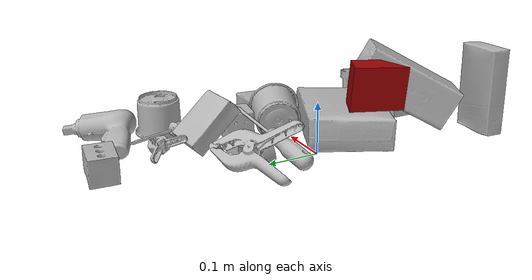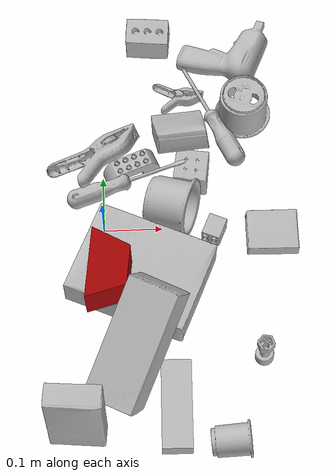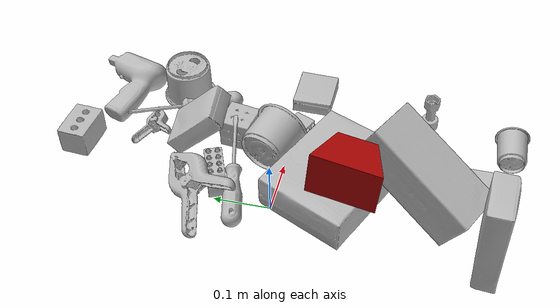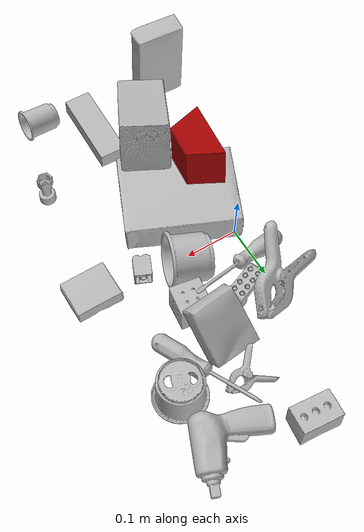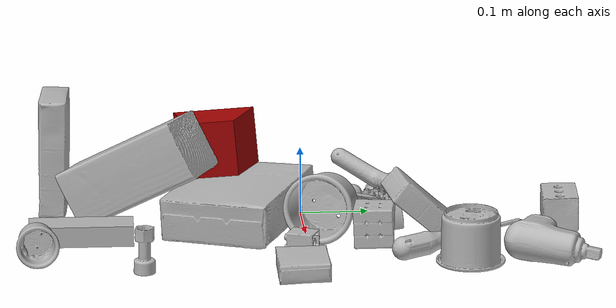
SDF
<sdf version="1.4">
  <world name="default">
    <light name="light1" type="point">
      <pose>0 0 1 0 0 0</pose>
      <diffuse>3 3 3 1</diffuse>
      <specular>3 3 3 1</specular>
    </light>
    <light name="light2" type="point">
      <pose>0 0.5 2 0 0 0</pose>
      <diffuse>1 1 1 1</diffuse>
      <specular>1 1 1 1</specular>
    </light>
    <light name="light3" type="point">
      <pose>0 0.5 2 0 0 0</pose>
      <diffuse>3 3 3 1</diffuse>
      <specular>3 3 3 1</specular>
    </light>
    <scene>
      <ambient>0.7 0.7 0.7</ambient>
    </scene>
    <model name="box21">
      <link name="link_box21">
        <collision name="default">
          <geometry>
            <mesh>
              <uri>model://cracker_box/collision_meshes/collision.obj</uri>
              <scale>1.0 1.0 1.0</scale>
            </mesh>
          </geometry>
          <surface>
            <friction>
              <ode>
                <mu>0.5</mu>
                <mu2>0.5</mu2>
              </ode>
            </friction>
          <contact>
        <ode>
            <max_vel>0</max_vel>
            <min_depth>0.0001</min_depth>
            <kp>1e8</kp>
        </ode>
    </contact></surface>
        </collision>
        <visual name="default">
          <geometry>
            <mesh>
              <uri>model://cracker_box/visual_meshes/visual.dae</uri>
              <scale>1.0 1.0 1.0</scale>
            </mesh>
          </geometry>
        </visual>
        <inertial>
          <mass>3.1344146728515625</mass>
          <pose>0.0009464123286306858 0.00025434247800149024 -0.0017029535956680775 -0.0003162077429326042 -0.011106488668875016 0.0025467950024750923</pose>
          <inertia>
            <ixx>0.0079725515</ixx>
            <iyy>0.01316425</iyy>
            <izz>0.01878659</izz>
            <ixy>0</ixy>
            <ixz>0</ixz>
            <iyz>0</iyz>
          </inertia>
        </inertial>
      </link>
      <pose>0.060860686004161835 -0.09581322222948074 0.03588751330971718 3.110387550784714 -0.021383625491293308 2.730843655550283</pose>
    </model>
    <model name="box22">
      <link name="link_box22">
        <collision name="default">
          <geometry>
            <mesh>
              <uri>model://jenga/collision_meshes/collision.obj</uri>
              <scale>1.0 1.0 1.0</scale>
            </mesh>
          </geometry>
          <surface>
            <friction>
              <ode>
                <mu>0.5</mu>
                <mu2>0.5</mu2>
              </ode>
            </friction>
          <contact>
        <ode>
            <max_vel>0</max_vel>
            <min_depth>0.0001</min_depth>
            <kp>1e8</kp>
        </ode>
    </contact></surface>
        </collision>
        <visual name="default">
          <geometry>
            <mesh>
              <uri>model://jenga/visual_meshes/visual.dae</uri>
              <scale>1.0 1.0 1.0</scale>
            </mesh>
          </geometry>
        </visual>
        <inertial>
          <mass>0.23869852721691132</mass>
          <pose>-2.502855807051674e-07 -0.0001025000965455547 -4.092339804628864e-05 0.0 -7.34215461761844e-07 0.0</pose>
          <inertia>
            <ixx>6.605367e-05</ixx>
            <iyy>0.00044757788</iyy>
            <izz>0.00047782745</izz>
            <ixy>0</ixy>
            <ixz>0</ixz>
            <iyz>0</iyz>
          </inertia>
        </inertial>
      </link>
      <pose>0.1126585602760315 -0.324530690908432 0.015000006183981895 3.1415926122303137 -4.0454671619777574e-10 1.554315019730165</pose>
    </model>
    <model name="box23">
      <link name="link_box23">
        <collision name="default">
          <geometry>
            <mesh>
              <uri>model://rubiks_cube/collision_meshes/collision.obj</uri>
              <scale>1.0 1.0 1.0</scale>
            </mesh>
          </geometry>
          <surface>
            <friction>
              <ode>
                <mu>0.5</mu>
                <mu2>0.5</mu2>
              </ode>
            </friction>
          <contact>
        <ode>
            <max_vel>0</max_vel>
            <min_depth>0.0001</min_depth>
            <kp>1e8</kp>
        </ode>
    </contact></surface>
        </collision>
        <visual name="default">
          <geometry>
            <mesh>
              <uri>model://rubiks_cube/visual_meshes/visual.dae</uri>
              <scale>1.0 1.0 1.0</scale>
            </mesh>
          </geometry>
        </visual>
        <inertial>
          <mass>0.26229962706565857</mass>
          <pose>2.6721041649580002e-05 5.2569666877388954e-05 -7.264316082000732e-06 -0.05467189873579491 -0.09814109048128683 -0.0344550730209751</pose>
          <inertia>
            <ixx>0.00014493814</ixx>
            <iyy>0.00014426222</iyy>
            <izz>0.00014613918</izz>
            <ixy>0</ixy>
            <ixz>0</ixz>
            <iyz>0</iyz>
          </inertia>
        </inertial>
      </link>
      <pose>0.15299853682518005 0.09395481646060944 0.029261628165841103 1.2520317419810192 1.537391742064347 1.1236884929141835</pose>
    </model>
    <model name="cup1">
      <link name="link_cup1">
        <collision name="default">
          <geometry>
            <mesh>
              <uri>model://j_cups/collision_meshes/collision.obj</uri>
              <scale>1.0 1.0 1.0</scale>
            </mesh>
          </geometry>
          <surface>
            <friction>
              <ode>
                <mu>0.5</mu>
                <mu2>0.5</mu2>
              </ode>
            </friction>
          <contact>
        <ode>
            <max_vel>0</max_vel>
            <min_depth>0.0001</min_depth>
            <kp>1e8</kp>
        </ode>
    </contact></surface>
        </collision>
        <visual name="default">
          <geometry>
            <mesh>
              <uri>model://j_cups/visual_meshes/visual.dae</uri>
              <scale>1.0 1.0 1.0</scale>
            </mesh>
          </geometry>
        </visual>
        <inertial>
          <mass>0.10388943552970886</mass>
          <pose>0.0006164857186377048 0.0005398984649218619 -0.0013479008339345455 0.03030360356214998 0.03758024855654077 0.43868424196936845</pose>
          <inertia>
            <ixx>0.00015254253</ixx>
            <iyy>0.0001541288</iyy>
            <izz>0.00017584988</izz>
            <ixy>0</ixy>
            <ixz>0</ixz>
            <iyz>0</iyz>
          </inertia>
        </inertial>
      </link>
      <pose>0.11553996801376343 0.024649348109960556 0.04714740067720413 1.4504657922654378 0.28816679903322884 1.2046305521339118</pose>
    </model>
    <model name="cup2">
      <link name="link_cup2">
        <collision name="default">
          <geometry>
            <mesh>
              <uri>model://i_cups/collision_meshes/collision.obj</uri>
              <scale>1.0 1.0 1.0</scale>
            </mesh>
          </geometry>
          <surface>
            <friction>
              <ode>
                <mu>0.5</mu>
                <mu2>0.5</mu2>
              </ode>
            </friction>
          <contact>
        <ode>
            <max_vel>0</max_vel>
            <min_depth>0.0001</min_depth>
            <kp>1e8</kp>
        </ode>
    </contact></surface>
        </collision>
        <visual name="default">
          <geometry>
            <mesh>
              <uri>model://i_cups/visual_meshes/visual.dae</uri>
              <scale>1.0 1.0 1.0</scale>
            </mesh>
          </geometry>
        </visual>
        <inertial>
          <mass>0.057485051453113556</mass>
          <pose>0.00011239853483857587 0.00016797262651380152 -0.000857901235576719 -0.028982969026390082 -0.03987335468246028 -0.34591562504163004</pose>
          <inertia>
            <ixx>7.958892e-05</ixx>
            <iyy>8.029015e-05</iyy>
            <izz>8.8953486e-05</izz>
            <ixy>0</ixy>
            <ixz>0</ixz>
            <iyz>0</iyz>
          </inertia>
        </inertial>
      </link>
      <pose>0.24957026541233063 0.2216828316450119 0.037933044135570526 3.1415926050478133 3.2719572576770106e-09 -0.0571125217833877</pose>
    </model>
    <model name="box11">
      <link name="link_box11">
        <collision name="default">
          <geometry>
            <mesh>
              <uri>model://wood_block/collision_meshes/collision.obj</uri>
              <scale>1.0 1.0 1.0</scale>
            </mesh>
          </geometry>
          <surface>
            <friction>
              <ode>
                <mu>0.5</mu>
                <mu2>0.5</mu2>
              </ode>
            </friction>
          <contact>
        <ode>
            <max_vel>0</max_vel>
            <min_depth>0.0001</min_depth>
            <kp>1e8</kp>
        </ode>
    </contact></surface>
        </collision>
        <visual name="default">
          <geometry>
            <mesh>
              <uri>model://wood_block/visual_meshes/visual.dae</uri>
              <scale>1.0 1.0 1.0</scale>
            </mesh>
          </geometry>
        </visual>
        <inertial>
          <mass>2.2218124866485596</mass>
          <pose>-5.813315510749817e-06 -0.000570809468626976 0.0002640858292579651 -0.052211005792275555 -0.005192694700552194 -0.006861375481739596</pose>
          <inertia>
            <ixx>0.0029731211</ixx>
            <iyy>0.009392092</iyy>
            <izz>0.009356961</izz>
            <ixy>0</ixy>
            <ixz>0</ixz>
            <iyz>0</iyz>
          </inertia>
        </inertial>
      </link>
      <pose>0.05137903615832329 -0.24137938022613525 0.08796810358762741 1.56036521658939 -0.5012744256206617 1.1099058576166252</pose>
    </model>
    <model name="box12">
      <link name="link_box12">
        <collision name="default">
          <geometry>
            <mesh>
              <uri>model://sugar_box/collision_meshes/collision.obj</uri>
              <scale>1.0 1.0 1.0</scale>
            </mesh>
          </geometry>
          <surface>
            <friction>
              <ode>
                <mu>0.5</mu>
                <mu2>0.5</mu2>
              </ode>
            </friction>
          <contact>
        <ode>
            <max_vel>0</max_vel>
            <min_depth>0.0001</min_depth>
            <kp>1e8</kp>
        </ode>
    </contact></surface>
        </collision>
        <visual name="default">
          <geometry>
            <mesh>
              <uri>model://sugar_box/visual_meshes/visual.dae</uri>
              <scale>1.0 1.0 1.0</scale>
            </mesh>
          </geometry>
        </visual>
        <inertial>
          <mass>1.0162616968154907</mass>
          <pose>0.0010343727190047503 3.849109634757042e-05 -0.00036364805418998003 -0.0004046261550277283 0.0010506634055573133 0.0026153787890220875</pose>
          <inertia>
            <ixx>0.00084674655</ixx>
            <iyy>0.002736858</iyy>
            <izz>0.0032763465</izz>
            <ixy>0</ixy>
            <ixz>0</ixz>
            <iyz>0</iyz>
          </inertia>
        </inertial>
      </link>
      <pose>-0.04652348905801773 -0.3585768938064575 0.08802387863397598 2.721177852143146 -1.5455801862440732 1.9096796611842282</pose>
    </model>
    <model name="box13">
      <link name="link_box13">
        <collision name="default">
          <geometry>
            <mesh>
              <uri>model://pudding_box/collision_meshes/collision.obj</uri>
              <scale>1.0 1.0 1.0</scale>
            </mesh>
          </geometry>
          <surface>
            <friction>
              <ode>
                <mu>0.5</mu>
                <mu2>0.5</mu2>
              </ode>
            </friction>
          <contact>
        <ode>
            <max_vel>0</max_vel>
            <min_depth>0.0001</min_depth>
            <kp>1e8</kp>
        </ode>
    </contact></surface>
        </collision>
        <visual name="default">
          <geometry>
            <mesh>
              <uri>model://pudding_box/visual_meshes/visual.dae</uri>
              <scale>1.0 1.0 1.0</scale>
            </mesh>
          </geometry>
        </visual>
        <inertial>
          <mass>0.24922829866409302</mass>
          <pose>0.0004894822486676276 0.0008067885646596551 -0.0005188828217796981 0.005213100397381839 -0.006603797317439846 0.02007982889363753</pose>
          <inertia>
            <ixx>0.00028173975</ixx>
            <iyy>0.00018955652</iyy>
            <izz>0.0004160624</izz>
            <ixy>0</ixy>
            <ixz>0</ixz>
            <iyz>0</iyz>
          </inertia>
        </inertial>
      </link>
      <pose>0.13483697175979614 0.16480134427547455 0.048136599361896515 2.409822549289039 -0.007213087589202206 0.11081264681364258</pose>
    </model>
    <model name="box14">
      <link name="link_box14">
        <collision name="default">
          <geometry>
            <mesh>
              <uri>model://gelatin_box/collision_meshes/collision.obj</uri>
              <scale>1.0 1.0 1.0</scale>
            </mesh>
          </geometry>
          <surface>
            <friction>
              <ode>
                <mu>0.5</mu>
                <mu2>0.5</mu2>
              </ode>
            </friction>
          <contact>
        <ode>
            <max_vel>0</max_vel>
            <min_depth>0.0001</min_depth>
            <kp>1e8</kp>
        </ode>
    </contact></surface>
        </collision>
        <visual name="default">
          <geometry>
            <mesh>
              <uri>model://gelatin_box/visual_meshes/visual.dae</uri>
              <scale>1.0 1.0 1.0</scale>
            </mesh>
          </geometry>
        </visual>
        <inertial>
          <mass>0.21856601536273956</mass>
          <pose>0.0004319618456065655 0.00011156871914863586 -0.00036403213744051754 -0.001050372093012012 -0.00475581868936722 0.016440559471878533</pose>
          <inertia>
            <ixx>0.00015428978</ixx>
            <iyy>0.000110208384</iyy>
            <izz>0.00023486343</izz>
            <ixy>0</ixy>
            <ixz>0</ixz>
            <iyz>0</iyz>
          </inertia>
        </inertial>
      </link>
      <pose>0.2863307297229767 -0.01876414753496647 0.014580640941858292 -3.125865717088005 -0.02571926584796487 1.5761088197175848</pose>
    </model>
    <model name="cup15">
      <link name="link_cup15">
        <collision name="default">
          <geometry>
            <mesh>
              <uri>model://b_cups/collision_meshes/collision.obj</uri>
              <scale>1.0 1.0 1.0</scale>
            </mesh>
          </geometry>
          <surface>
            <friction>
              <ode>
                <mu>0.5</mu>
                <mu2>0.5</mu2>
              </ode>
            </friction>
          <contact>
        <ode>
            <max_vel>0</max_vel>
            <min_depth>0.0001</min_depth>
            <kp>1e8</kp>
        </ode>
    </contact></surface>
        </collision>
        <visual name="default">
          <geometry>
            <mesh>
              <uri>model://b_cups/visual_meshes/visual.dae</uri>
              <scale>1.0 1.0 1.0</scale>
            </mesh>
          </geometry>
        </visual>
        <inertial>
          <mass>0.04691024869680405</mass>
          <pose>0.0005182002787478268 0.0018058588029816747 -0.0013381802709773183 0.1135631498080702 0.03872518969029637 -0.3456955043116969</pose>
          <inertia>
            <ixx>3.0706047e-05</ixx>
            <iyy>3.012308e-05</iyy>
            <izz>2.5838557e-05</izz>
            <ixy>0</ixy>
            <ixz>0</ixz>
            <iyz>0</iyz>
          </inertia>
        </inertial>
      </link>
      <pose>0.19781333208084106 -0.38854658603668213 0.027764134109020233 -1.3688720203341334 -1.0617758193997369 -1.7214600573814267</pose>
    </model>
    <model name="toy1">
      <link name="link_toy1">
        <collision name="default">
          <geometry>
            <mesh>
              <uri>model://e_lego_duplo/collision_meshes/collision.obj</uri>
              <scale>1.0 1.0 1.0</scale>
            </mesh>
          </geometry>
          <surface>
            <friction>
              <ode>
                <mu>0.5</mu>
                <mu2>0.5</mu2>
              </ode>
            </friction>
          <contact>
        <ode>
            <max_vel>0</max_vel>
            <min_depth>0.0001</min_depth>
            <kp>1e8</kp>
        </ode>
    </contact></surface>
        </collision>
        <visual name="default">
          <geometry>
            <mesh>
              <uri>model://e_lego_duplo/visual_meshes/visual.dae</uri>
              <scale>1.0 1.0 1.0</scale>
            </mesh>
          </geometry>
        </visual>
        <inertial>
          <mass>0.06732096523046494</mass>
          <pose>0.000325604691170156 0.00023485434940084815 0.001952146296389401 -0.02256754688519212 -6.825533823954374e-05 -0.007625149208872714</pose>
          <inertia>
            <ixx>1.40386455e-05</ixx>
            <iyy>5.761822e-05</iyy>
            <izz>5.6108554e-05</izz>
            <ixy>0</ixy>
            <ixz>0</ixz>
            <iyz>0</iyz>
          </inertia>
        </inertial>
      </link>
      <pose>0.050306033343076706 0.11150390654802322 0.021808940917253494 1.4826995970710298e-05 2.2625317224790116e-06 0.3863337973581891</pose>
    </model>
    <model name="toy2">
      <link name="link_toy2">
        <collision name="default">
          <geometry>
            <mesh>
              <uri>model://c_toy_airplane/collision_meshes/collision.obj</uri>
              <scale>1.0 1.0 1.0</scale>
            </mesh>
          </geometry>
          <surface>
            <friction>
              <ode>
                <mu>0.5</mu>
                <mu2>0.5</mu2>
              </ode>
            </friction>
          <contact>
        <ode>
            <max_vel>0</max_vel>
            <min_depth>0.0001</min_depth>
            <kp>1e8</kp>
        </ode>
    </contact></surface>
        </collision>
        <visual name="default">
          <geometry>
            <mesh>
              <uri>model://c_toy_airplane/visual_meshes/visual.dae</uri>
              <scale>1.0 1.0 1.0</scale>
            </mesh>
          </geometry>
        </visual>
        <inertial>
          <mass>0.036399733275175095</mass>
          <pose>-0.00023024277470540255 -4.4302899482318026e-07 -0.0060805329121649265 -0.006192184726307751 -0.016797944030005924 0.7654593329003626</pose>
          <inertia>
            <ixx>1.6714015e-05</ixx>
            <iyy>1.6666843e-05</iyy>
            <izz>3.9241195e-06</izz>
            <ixy>0</ixy>
            <ixz>0</ixz>
            <iyz>0</iyz>
          </inertia>
        </inertial>
      </link>
      <pose>0.26007890701293945 -0.2394806295633316 0.033511992543935776 -9.628379020277916e-05 2.0370102740690585e-05 -2.009337495777027</pose>
    </model>
    <model name="toy3">
      <link name="link_toy3">
        <collision name="default">
          <geometry>
            <mesh>
              <uri>model://foam_brick/collision_meshes/collision.obj</uri>
              <scale>1.0 1.0 1.0</scale>
            </mesh>
          </geometry>
          <surface>
            <friction>
              <ode>
                <mu>0.5</mu>
                <mu2>0.5</mu2>
              </ode>
            </friction>
          <contact>
        <ode>
            <max_vel>0</max_vel>
            <min_depth>0.0001</min_depth>
            <kp>1e8</kp>
        </ode>
    </contact></surface>
        </collision>
        <visual name="default">
          <geometry>
            <mesh>
              <uri>model://foam_brick/visual_meshes/visual.dae</uri>
              <scale>1.0 1.0 1.0</scale>
            </mesh>
          </geometry>
        </visual>
        <inertial>
          <mass>0.28719362616539</mass>
          <pose>-0.0002522472059354186 0.00034584346576593816 -0.0002532101352699101 -0.2940183114741006 0.017274439707053432 -0.0007449906726392561</pose>
          <inertia>
            <ixx>0.00012545152</ixx>
            <iyy>0.00020028985</iyy>
            <izz>0.00020283528</izz>
            <ixy>0</ixy>
            <ixz>0</ixz>
            <iyz>0</iyz>
          </inertia>
        </inertial>
      </link>
      <pose>0.0850953608751297 0.371232807636261 0.025917524471879005 0.013816305587854476 0.004276110786972024 -0.07881075275677257</pose>
    </model>
    <model name="toy4">
      <link name="link_toy4">
        <collision name="default">
          <geometry>
            <mesh>
              <uri>model://prism/collision_meshes/collision.obj</uri>
              <scale>1.0 1.0 1.0</scale>
            </mesh>
          </geometry>
          <surface>
            <friction>
              <ode>
                <mu>0.5</mu>
                <mu2>0.5</mu2>
              </ode>
            </friction>
          <contact>
        <ode>
            <max_vel>0</max_vel>
            <min_depth>0.0001</min_depth>
            <kp>1e8</kp>
        </ode>
    </contact></surface>
        </collision>
        <visual name="default">
          <geometry>
            <mesh>
              <uri>model://prism/visual_meshes/visual.dae</uri>
              <scale>1.0 1.0 1.0</scale>
            </mesh>
          </geometry>
        </visual>
        <inertial>
          <mass>0.7170383930206299</mass>
          <pose>-9.85359656624496e-05 -4.96157269935793e-07 -0.0033869098406285048 0.0 0.006559181231804993 0.0</pose>
          <inertia>
            <ixx>0.0006471183</ixx>
            <iyy>0.0007820508</iyy>
            <izz>0.0009579188</izz>
            <ixy>0</ixy>
            <ixz>0</ixz>
            <iyz>0</iyz>
          </inertia>
        </inertial>
      </link>
      <pose>0.010713081806898117 -0.12596741318702698 0.11265174299478531 1.5686054944505168 -0.08882013838225034 1.4514946007207694</pose>
    </model>
    <model name="toy5">
      <link name="link_toy5">
        <collision name="default">
          <geometry>
            <mesh>
              <uri>model://b_toy_airplane/collision_meshes/collision.obj</uri>
              <scale>1.0 1.0 1.0</scale>
            </mesh>
          </geometry>
          <surface>
            <friction>
              <ode>
                <mu>0.5</mu>
                <mu2>0.5</mu2>
              </ode>
            </friction>
          <contact>
        <ode>
            <max_vel>0</max_vel>
            <min_depth>0.0001</min_depth>
            <kp>1e8</kp>
        </ode>
    </contact></surface>
        </collision>
        <visual name="default">
          <geometry>
            <mesh>
              <uri>model://b_toy_airplane/visual_meshes/visual.dae</uri>
              <scale>1.0 1.0 1.0</scale>
            </mesh>
          </geometry>
        </visual>
        <inertial>
          <mass>0.399619996547699</mass>
          <pose>0.005081363022327423 0.004015584941953421 0.009543066844344139 -0.04001809649421662 -0.04022184162979335 -0.5601502893443677</pose>
          <inertia>
            <ixx>0.0007419019</ixx>
            <iyy>0.00029654545</iyy>
            <izz>0.0009229998</izz>
            <ixy>0</ixy>
            <ixz>0</ixz>
            <iyz>0</iyz>
          </inertia>
        </inertial>
      </link>
      <pose>0.22958403825759888 0.32317042350769043 0.0356890931725502 3.069570881090603 0.07405945020796646 1.186155373754167</pose>
    </model>
    <model name="toy6">
      <link name="link_toy6">
        <collision name="default">
          <geometry>
            <mesh>
              <uri>model://f_lego_duplo/collision_meshes/collision.obj</uri>
              <scale>1.0 1.0 1.0</scale>
            </mesh>
          </geometry>
          <surface>
            <friction>
              <ode>
                <mu>0.5</mu>
                <mu2>0.5</mu2>
              </ode>
            </friction>
          <contact>
        <ode>
            <max_vel>0</max_vel>
            <min_depth>0.0001</min_depth>
            <kp>1e8</kp>
        </ode>
    </contact></surface>
        </collision>
        <visual name="default">
          <geometry>
            <mesh>
              <uri>model://f_lego_duplo/visual_meshes/visual.dae</uri>
              <scale>1.0 1.0 1.0</scale>
            </mesh>
          </geometry>
        </visual>
        <inertial>
          <mass>0.05315950885415077</mass>
          <pose>2.3694145056651905e-05 0.0001339314185315743 0.0018837872194126248 0.029838727868319145 -0.014424898970195728 -0.6756716124708322</pose>
          <inertia>
            <ixx>1.1232896e-05</ixx>
            <iyy>1.1332969e-05</iyy>
            <izz>9.750634e-06</izz>
            <ixy>0</ixy>
            <ixz>0</ixz>
            <iyz>0</iyz>
          </inertia>
        </inertial>
      </link>
      <pose>0.18740051984786987 -0.013014198280870914 0.016207048669457436 1.579051722643901 7.532524860445016e-05 -0.40290511098936155</pose>
    </model>
    <model name="hardware1">
      <link name="link_hardware1">
        <collision name="default">
          <geometry>
            <mesh>
              <uri>model://flat_screwdriver/collision_meshes/collision.obj</uri>
              <scale>1.0 1.0 1.0</scale>
            </mesh>
          </geometry>
          <surface>
            <friction>
              <ode>
                <mu>0.5</mu>
                <mu2>0.5</mu2>
              </ode>
            </friction>
          <contact>
        <ode>
            <max_vel>0</max_vel>
            <min_depth>0.0001</min_depth>
            <kp>1e8</kp>
        </ode>
    </contact></surface>
        </collision>
        <visual name="default">
          <geometry>
            <mesh>
              <uri>model://flat_screwdriver/visual_meshes/visual.dae</uri>
              <scale>1.0 1.0 1.0</scale>
            </mesh>
          </geometry>
        </visual>
        <inertial>
          <mass>0.12191366404294968</mass>
          <pose>-0.0489187091588974 -0.0006576801533810794 -0.0006140916957519948 -0.5614853566550635 -0.0032337267722331534 0.006982277608032515</pose>
          <inertia>
            <ixx>1.4404012e-05</ixx>
            <iyy>0.00018286215</iyy>
            <izz>0.00018277747</izz>
            <ixy>0</ixy>
            <ixz>0</ixz>
            <iyz>0</iyz>
          </inertia>
        </inertial>
      </link>
      <pose>0.03887799009680748 0.0734146311879158 0.03834178298711777 2.9955883441308306 -0.24720868362344148 0.22957576438473348</pose>
    </model>
    <model name="hardware2">
      <link name="link_hardware2">
        <collision name="default">
          <geometry>
            <mesh>
              <uri>model://medium_clamp/collision_meshes/collision.obj</uri>
              <scale>1.0 1.0 1.0</scale>
            </mesh>
          </geometry>
          <surface>
            <friction>
              <ode>
                <mu>0.5</mu>
                <mu2>0.5</mu2>
              </ode>
            </friction>
          <contact>
        <ode>
            <max_vel>0</max_vel>
            <min_depth>0.0001</min_depth>
            <kp>1e8</kp>
        </ode>
    </contact></surface>
        </collision>
        <visual name="default">
          <geometry>
            <mesh>
              <uri>model://medium_clamp/visual_meshes/visual.dae</uri>
              <scale>1.0 1.0 1.0</scale>
            </mesh>
          </geometry>
        </visual>
        <inertial>
          <mass>0.018204163759946823</mass>
          <pose>0.005390994716435671 0.00039532413939014077 -0.0001222158025484532 -0.0012269240735234023 0.0025845026557488396 0.03820772126630794</pose>
          <inertia>
            <ixx>4.959469e-06</ixx>
            <iyy>7.217431e-06</iyy>
            <izz>1.1117007e-05</izz>
            <ixy>0</ixy>
            <ixz>0</ixz>
            <iyz>0</iyz>
          </inertia>
        </inertial>
      </link>
      <pose>0.13574840128421783 0.25143685936927795 0.016776038333773613 -0.38132543165075095 0.14274115602492377 0.133719311564251</pose>
    </model>
    <model name="hardware3">
      <link name="link_hardware3">
        <collision name="default">
          <geometry>
            <mesh>
              <uri>model://large_clamp/collision_meshes/collision.obj</uri>
              <scale>1.0 1.0 1.0</scale>
            </mesh>
          </geometry>
          <surface>
            <friction>
              <ode>
                <mu>0.5</mu>
                <mu2>0.5</mu2>
              </ode>
            </friction>
          <contact>
        <ode>
            <max_vel>0</max_vel>
            <min_depth>0.0001</min_depth>
            <kp>1e8</kp>
        </ode>
    </contact></surface>
        </collision>
        <visual name="default">
          <geometry>
            <mesh>
              <uri>model://large_clamp/visual_meshes/visual.dae</uri>
              <scale>1.0 1.0 1.0</scale>
            </mesh>
          </geometry>
        </visual>
        <inertial>
          <mass>0.18972517549991608</mass>
          <pose>0.006369356997311115 0.0003585676895454526 -0.00018398048996459693 -0.002133071569430183 0.00967158655684735 0.02663316926682878</pose>
          <inertia>
            <ixx>0.0001673895</ixx>
            <iyy>0.00031788155</iyy>
            <izz>0.00045985627</izz>
            <ixy>0</ixy>
            <ixz>0</ixz>
            <iyz>0</iyz>
          </inertia>
        </inertial>
      </link>
      <pose>-0.0043722521513700485 0.13158845901489258 0.035348858684301376 2.4512158344655854 0.1448378993352716 0.6944662065494515</pose>
    </model>
    <model name="hardware4">
      <link name="link_hardware4">
        <collision name="default">
          <geometry>
            <mesh>
              <uri>model://phillips_screwdriver/collision_meshes/collision.obj</uri>
              <scale>1.0 1.0 1.0</scale>
            </mesh>
          </geometry>
          <surface>
            <friction>
              <ode>
                <mu>0.5</mu>
                <mu2>0.5</mu2>
              </ode>
            </friction>
          <contact>
        <ode>
            <max_vel>0</max_vel>
            <min_depth>0.0001</min_depth>
            <kp>1e8</kp>
        </ode>
    </contact></surface>
        </collision>
        <visual name="default">
          <geometry>
            <mesh>
              <uri>model://phillips_screwdriver/visual_meshes/visual.dae</uri>
              <scale>1.0 1.0 1.0</scale>
            </mesh>
          </geometry>
        </visual>
        <inertial>
          <mass>0.10424148291349411</mass>
          <pose>-0.047771818935871124 0.0010362300090491772 -0.000455554953077808 -0.15717568897110376 0.005850990280187748 -0.0021567475529960492</pose>
          <inertia>
            <ixx>1.2247306e-05</ixx>
            <iyy>0.00015355984</iyy>
            <izz>0.00015369034</izz>
            <ixy>0</ixy>
            <ixz>0</ixz>
            <iyz>0</iyz>
          </inertia>
        </inertial>
      </link>
      <pose>0.19358044862747192 0.20834213495254517 0.022828128188848495 -0.9110973634462151 -0.05108856147538772 2.02464283321753</pose>
    </model>
  <physics type="ode">
      <max_contacts>50</max_contacts>
      <ode>
        <solver>
          <type>quick</type>
          <iters>75</iters>
        </solver>
        <constraints>
          <contact_max_correcting_vel>0</contact_max_correcting_vel>
          <contact_surface_layer>0</contact_surface_layer>
        </constraints>
      </ode>
    </physics></world>
</sdf>
